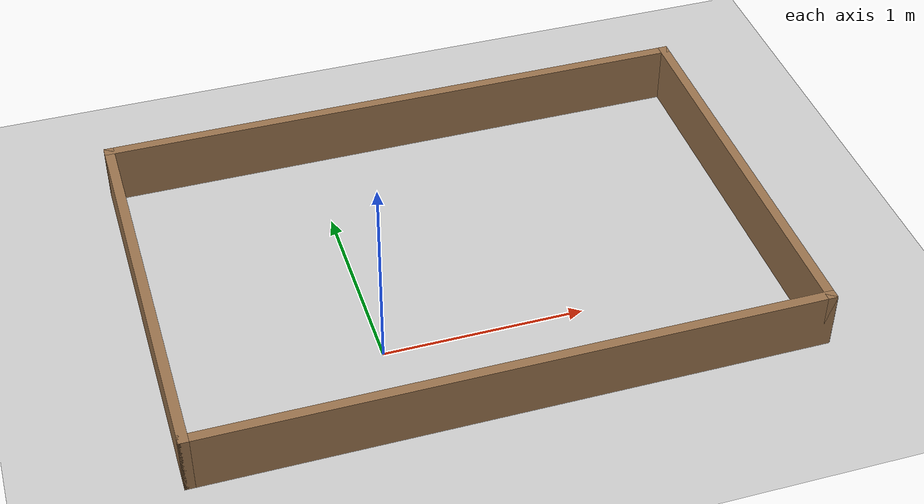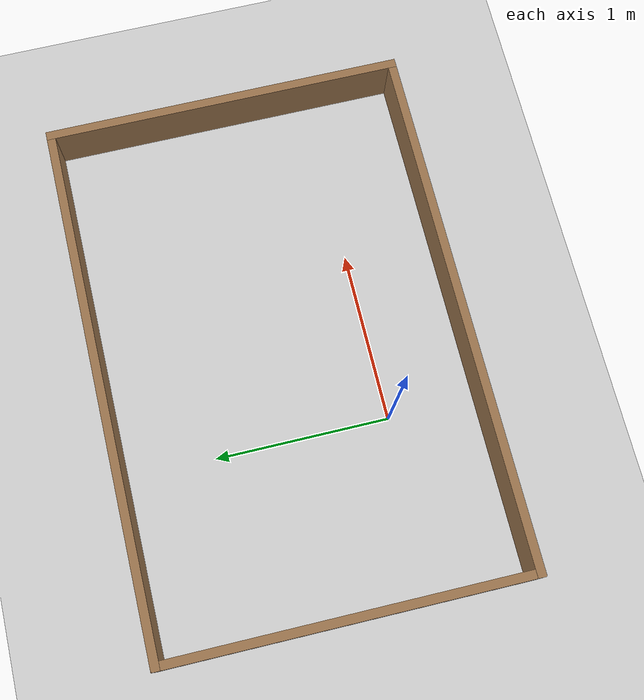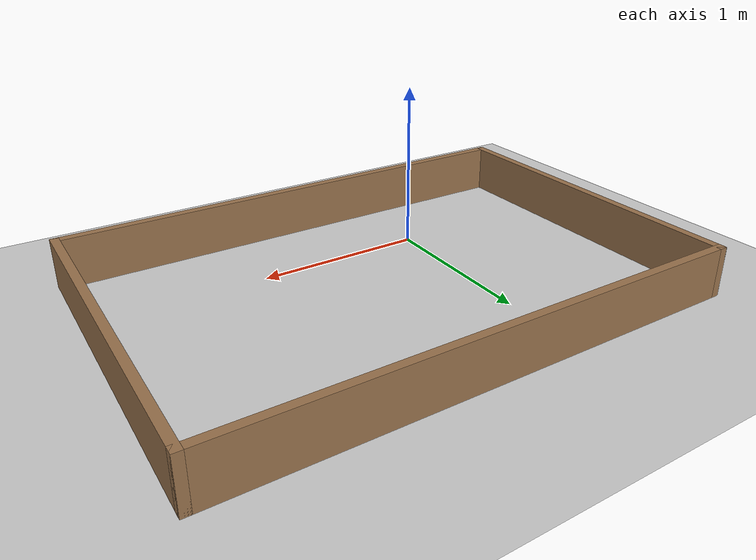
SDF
<?xml version="1.0" ?>
<sdf version="1.7">
  <world name="arena">
    <physics type="ode"><max_step_size>0.01</max_step_size></physics>
    <light type="directional" name="sun">
      <cast_shadows>true</cast_shadows>
      <pose>0 0 10 0 0 0</pose>
      <diffuse>0.8 0.8 0.8 1</diffuse>
      <specular>0.2 0.2 0.2 1</specular>
      <direction>-0.5 0.1 -0.9</direction>
    </light>
    <model name="ground_plane">
      <static>true</static>
      <link name="link">
        <collision name="collision"><geometry><plane><normal>0 0 1</normal></plane></geometry></collision>
        <visual name="visual"><geometry><plane><normal>0 0 1</normal><size>100 100</size></plane></geometry>
          <material><ambient>0.8 0.8 0.8 1</ambient><diffuse>0.8 0.8 0.8 1</diffuse></material></visual>
      </link>
    </model>
    <model name="pared_oeste"><static>true</static><pose>-1.025 0.500 0.150 0 0 0</pose><link name="link"><collision name="collision"><geometry><box><size>0.050 2.100 0.300</size></box></geometry></collision><visual name="visual"><geometry><box><size>0.050 2.100 0.300</size></box></geometry><material><ambient>0.6 0.45 0.3 1</ambient><diffuse>0.6 0.45 0.3 1</diffuse></material></visual></link></model>
    <model name="pared_este"><static>true</static><pose>2.025 0.500 0.150 0 0 0</pose><link name="link"><collision name="collision"><geometry><box><size>0.050 2.100 0.300</size></box></geometry></collision><visual name="visual"><geometry><box><size>0.050 2.100 0.300</size></box></geometry><material><ambient>0.6 0.45 0.3 1</ambient><diffuse>0.6 0.45 0.3 1</diffuse></material></visual></link></model>
    <model name="pared_sur"><static>true</static><pose>0.500 -0.525 0.150 0 0 0</pose><link name="link"><collision name="collision"><geometry><box><size>3.100 0.050 0.300</size></box></geometry></collision><visual name="visual"><geometry><box><size>3.100 0.050 0.300</size></box></geometry><material><ambient>0.6 0.45 0.3 1</ambient><diffuse>0.6 0.45 0.3 1</diffuse></material></visual></link></model>
    <model name="pared_norte"><static>true</static><pose>0.500 1.525 0.150 0 0 0</pose><link name="link"><collision name="collision"><geometry><box><size>3.100 0.050 0.300</size></box></geometry></collision><visual name="visual"><geometry><box><size>3.100 0.050 0.300</size></box></geometry><material><ambient>0.6 0.45 0.3 1</ambient><diffuse>0.6 0.45 0.3 1</diffuse></material></visual></link></model>
  </world>
</sdf>
